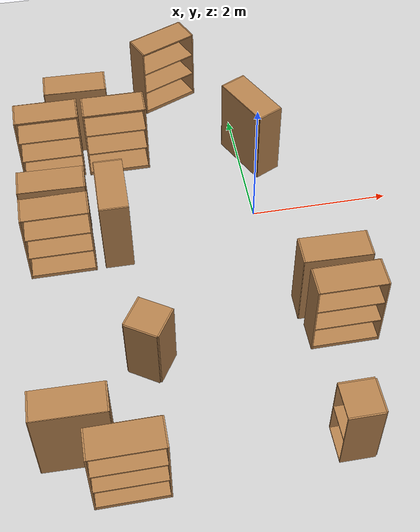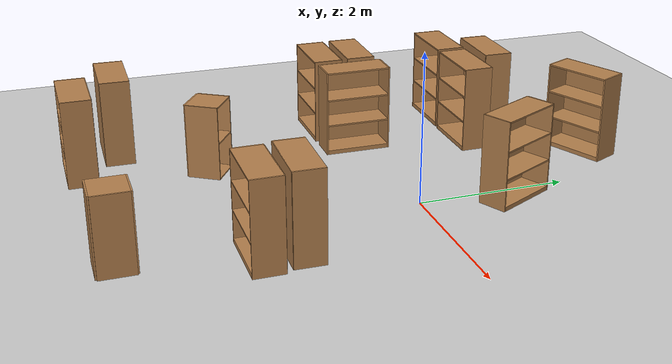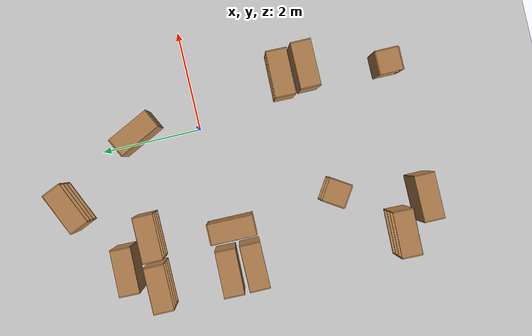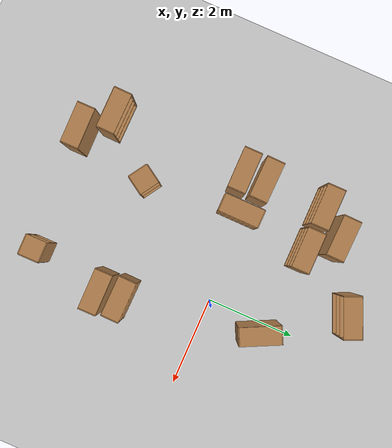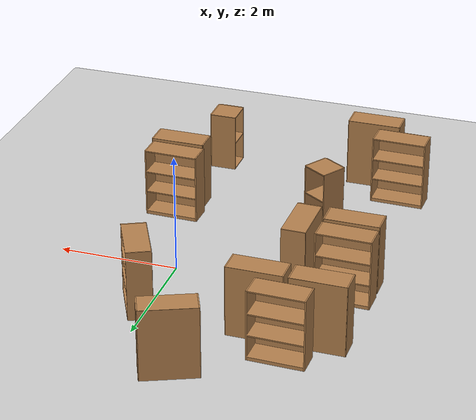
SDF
<sdf version="1.7">
 <world name="default">
  <model name="ground_plane">
   <static>1</static>
   <link name="link">
    <collision name="collision">
     <geometry><plane><normal>0 0 1</normal><size>100 100</size></plane></geometry>
     <surface><friction><ode><mu>100</mu><mu2>50</mu2></ode></friction></surface>
    </collision>
    <visual name="visual">
     <cast_shadows>0</cast_shadows>
     <geometry><plane><normal>0 0 1</normal><size>100 100</size></plane></geometry>
     <material>
      <script><uri>file://media/materials/scripts/gazebo.material</uri><name>Gazebo/Grey</name></script>
     </material>
    </visual>
   </link>
  </model>
  <model name="bookshelf_0">
   <static>1</static>
   <link name="link">
    <inertial><mass>1</mass></inertial>
    <collision name="back">
     <pose>0 0.005 0.6 0 -0 0</pose>
     <geometry><box><size>0.9 0.01 1.2</size></box></geometry>
    </collision>
    <visual name="visual1">
     <pose>0 0.005 0.6 0 -0 0</pose>
     <geometry><box><size>0.9 0.01 1.2</size></box></geometry>
     <material>
      <script><uri>file://media/materials/scripts/gazebo.material</uri><name>Gazebo/Wood</name></script>
     </material>
    </visual>
    <collision name="left_side">
     <pose>0.45 -0.195 0.6 0 -0 0</pose>
     <geometry><box><size>0.02 0.4 1.2</size></box></geometry>
    </collision>
    <visual name="visual2">
     <pose>0.45 -0.195 0.6 0 -0 0</pose>
     <geometry><box><size>0.02 0.4 1.2</size></box></geometry>
     <material>
      <script><uri>file://media/materials/scripts/gazebo.material</uri><name>Gazebo/Wood</name></script>
     </material>
    </visual>
    <collision name="right_side">
     <pose>-0.45 -0.195 0.6 0 -0 0</pose>
     <geometry><box><size>0.02 0.4 1.2</size></box></geometry>
    </collision>
    <visual name="visual3">
     <pose>-0.45 -0.195 0.6 0 -0 0</pose>
     <geometry><box><size>0.02 0.4 1.2</size></box></geometry>
     <material>
      <script><uri>file://media/materials/scripts/gazebo.material</uri><name>Gazebo/Wood</name></script>
     </material>
    </visual>
    <collision name="bottom">
     <pose>0 -0.195 0.03 0 -0 0</pose>
     <geometry><box><size>0.88 0.4 0.06</size></box></geometry>
    </collision>
    <visual name="visual4">
     <pose>0 -0.195 0.03 0 -0 0</pose>
     <geometry><box><size>0.88 0.4 0.06</size></box></geometry>
     <material>
      <script><uri>file://media/materials/scripts/gazebo.material</uri><name>Gazebo/Wood</name></script>
     </material>
    </visual>
    <collision name="top">
     <pose>0 -0.195 1.19 0 -0 0</pose>
     <geometry><box><size>0.88 0.4 0.02</size></box></geometry>
    </collision>
    <visual name="visual5">
     <pose>0 -0.195 1.19 0 -0 0</pose>
     <geometry><box><size>0.88 0.4 0.02</size></box></geometry>
     <material>
      <script><uri>file://media/materials/scripts/gazebo.material</uri><name>Gazebo/Wood</name></script>
     </material>
    </visual>
    <collision name="low_shelf">
     <pose>0 -0.195 0.43 0 -0 0</pose>
     <geometry><box><size>0.88 0.4 0.02</size></box></geometry>
    </collision>
    <visual name="visual6">
     <pose>0 -0.195 0.43 0 -0 0</pose>
     <geometry><box><size>0.88 0.4 0.02</size></box></geometry>
     <material>
      <script><uri>file://media/materials/scripts/gazebo.material</uri><name>Gazebo/Wood</name></script>
     </material>
    </visual>
    <collision name="high_shelf">
     <pose>0 -0.195 0.8 0 -0 0</pose>
     <geometry><box><size>0.88 0.4 0.02</size></box></geometry>
    </collision>
    <visual name="visual7">
     <pose>0 -0.195 0.8 0 -0 0</pose>
     <geometry><box><size>0.88 0.4 0.02</size></box></geometry>
     <material>
      <script><uri>file://media/materials/scripts/gazebo.material</uri><name>Gazebo/Wood</name></script>
     </material>
    </visual>
   </link>
   <pose>0.718779 -2.08136 0 0 -0 0</pose>
  </model>
  <model name="bookshelf_1_clone_0">
   <static>1</static>
   <link name="link">
    <inertial><mass>1</mass></inertial>
    <collision name="back">
     <pose>0 0.005 0.6 0 -0 0</pose>
     <geometry><box><size>0.9 0.01 1.2</size></box></geometry>
    </collision>
    <visual name="visual1">
     <pose>0 0.005 0.6 0 -0 0</pose>
     <geometry><box><size>0.9 0.01 1.2</size></box></geometry>
     <material>
      <script><uri>file://media/materials/scripts/gazebo.material</uri><name>Gazebo/Wood</name></script>
     </material>
    </visual>
    <collision name="left_side">
     <pose>0.45 -0.195 0.6 0 -0 0</pose>
     <geometry><box><size>0.02 0.4 1.2</size></box></geometry>
    </collision>
    <visual name="visual2">
     <pose>0.45 -0.195 0.6 0 -0 0</pose>
     <geometry><box><size>0.02 0.4 1.2</size></box></geometry>
     <material>
      <script><uri>file://media/materials/scripts/gazebo.material</uri><name>Gazebo/Wood</name></script>
     </material>
    </visual>
    <collision name="right_side">
     <pose>-0.45 -0.195 0.6 0 -0 0</pose>
     <geometry><box><size>0.02 0.4 1.2</size></box></geometry>
    </collision>
    <visual name="visual3">
     <pose>-0.45 -0.195 0.6 0 -0 0</pose>
     <geometry><box><size>0.02 0.4 1.2</size></box></geometry>
     <material>
      <script><uri>file://media/materials/scripts/gazebo.material</uri><name>Gazebo/Wood</name></script>
     </material>
    </visual>
    <collision name="bottom">
     <pose>0 -0.195 0.03 0 -0 0</pose>
     <geometry><box><size>0.88 0.4 0.06</size></box></geometry>
    </collision>
    <visual name="visual4">
     <pose>0 -0.195 0.03 0 -0 0</pose>
     <geometry><box><size>0.88 0.4 0.06</size></box></geometry>
     <material>
      <script><uri>file://media/materials/scripts/gazebo.material</uri><name>Gazebo/Wood</name></script>
     </material>
    </visual>
    <collision name="top">
     <pose>0 -0.195 1.19 0 -0 0</pose>
     <geometry><box><size>0.88 0.4 0.02</size></box></geometry>
    </collision>
    <visual name="visual5">
     <pose>0 -0.195 1.19 0 -0 0</pose>
     <geometry><box><size>0.88 0.4 0.02</size></box></geometry>
     <material>
      <script><uri>file://media/materials/scripts/gazebo.material</uri><name>Gazebo/Wood</name></script>
     </material>
    </visual>
    <collision name="low_shelf">
     <pose>0 -0.195 0.43 0 -0 0</pose>
     <geometry><box><size>0.88 0.4 0.02</size></box></geometry>
    </collision>
    <visual name="visual6">
     <pose>0 -0.195 0.43 0 -0 0</pose>
     <geometry><box><size>0.88 0.4 0.02</size></box></geometry>
     <material>
      <script><uri>file://media/materials/scripts/gazebo.material</uri><name>Gazebo/Wood</name></script>
     </material>
    </visual>
    <collision name="high_shelf">
     <pose>0 -0.195 0.8 0 -0 0</pose>
     <geometry><box><size>0.88 0.4 0.02</size></box></geometry>
    </collision>
    <visual name="visual7">
     <pose>0 -0.195 0.8 0 -0 0</pose>
     <geometry><box><size>0.88 0.4 0.02</size></box></geometry>
     <material>
      <script><uri>file://media/materials/scripts/gazebo.material</uri><name>Gazebo/Wood</name></script>
     </material>
    </visual>
   </link>
   <pose>0.660104 -1.9707 0 0 -0 3.12003</pose>
  </model>
  <model name="bookshelf_5">
   <static>1</static>
   <link name="link">
    <inertial><mass>1</mass></inertial>
    <collision name="back">
     <pose>0 0.005 0.6 0 -0 0</pose>
     <geometry><box><size>0.9 0.01 1.2</size></box></geometry>
    </collision>
    <visual name="visual1">
     <pose>0 0.005 0.6 0 -0 0</pose>
     <geometry><box><size>0.9 0.01 1.2</size></box></geometry>
     <material>
      <script><uri>file://media/materials/scripts/gazebo.material</uri><name>Gazebo/Wood</name></script>
     </material>
    </visual>
    <collision name="left_side">
     <pose>0.45 -0.195 0.6 0 -0 0</pose>
     <geometry><box><size>0.02 0.4 1.2</size></box></geometry>
    </collision>
    <visual name="visual2">
     <pose>0.45 -0.195 0.6 0 -0 0</pose>
     <geometry><box><size>0.02 0.4 1.2</size></box></geometry>
     <material>
      <script><uri>file://media/materials/scripts/gazebo.material</uri><name>Gazebo/Wood</name></script>
     </material>
    </visual>
    <collision name="right_side">
     <pose>-0.45 -0.195 0.6 0 -0 0</pose>
     <geometry><box><size>0.02 0.4 1.2</size></box></geometry>
    </collision>
    <visual name="visual3">
     <pose>-0.45 -0.195 0.6 0 -0 0</pose>
     <geometry><box><size>0.02 0.4 1.2</size></box></geometry>
     <material>
      <script><uri>file://media/materials/scripts/gazebo.material</uri><name>Gazebo/Wood</name></script>
     </material>
    </visual>
    <collision name="bottom">
     <pose>0 -0.195 0.03 0 -0 0</pose>
     <geometry><box><size>0.88 0.4 0.06</size></box></geometry>
    </collision>
    <visual name="visual4">
     <pose>0 -0.195 0.03 0 -0 0</pose>
     <geometry><box><size>0.88 0.4 0.06</size></box></geometry>
     <material>
      <script><uri>file://media/materials/scripts/gazebo.material</uri><name>Gazebo/Wood</name></script>
     </material>
    </visual>
    <collision name="top">
     <pose>0 -0.195 1.19 0 -0 0</pose>
     <geometry><box><size>0.88 0.4 0.02</size></box></geometry>
    </collision>
    <visual name="visual5">
     <pose>0 -0.195 1.19 0 -0 0</pose>
     <geometry><box><size>0.88 0.4 0.02</size></box></geometry>
     <material>
      <script><uri>file://media/materials/scripts/gazebo.material</uri><name>Gazebo/Wood</name></script>
     </material>
    </visual>
    <collision name="low_shelf">
     <pose>0 -0.195 0.43 0 -0 0</pose>
     <geometry><box><size>0.88 0.4 0.02</size></box></geometry>
    </collision>
    <visual name="visual6">
     <pose>0 -0.195 0.43 0 -0 0</pose>
     <geometry><box><size>0.88 0.4 0.02</size></box></geometry>
     <material>
      <script><uri>file://media/materials/scripts/gazebo.material</uri><name>Gazebo/Wood</name></script>
     </material>
    </visual>
    <collision name="high_shelf">
     <pose>0 -0.195 0.8 0 -0 0</pose>
     <geometry><box><size>0.88 0.4 0.02</size></box></geometry>
    </collision>
    <visual name="visual7">
     <pose>0 -0.195 0.8 0 -0 0</pose>
     <geometry><box><size>0.88 0.4 0.02</size></box></geometry>
     <material>
      <script><uri>file://media/materials/scripts/gazebo.material</uri><name>Gazebo/Wood</name></script>
     </material>
    </visual>
   </link>
   <pose>-1.83428 1.61576 0 0 -0 0</pose>
  </model>
  <model name="bookshelf_6">
   <static>1</static>
   <link name="link">
    <inertial><mass>1</mass></inertial>
    <collision name="back">
     <pose>0 0.005 0.6 0 -0 0</pose>
     <geometry><box><size>0.9 0.01 1.2</size></box></geometry>
    </collision>
    <visual name="visual1">
     <pose>0 0.005 0.6 0 -0 0</pose>
     <geometry><box><size>0.9 0.01 1.2</size></box></geometry>
     <material>
      <script><uri>file://media/materials/scripts/gazebo.material</uri><name>Gazebo/Wood</name></script>
     </material>
    </visual>
    <collision name="left_side">
     <pose>0.45 -0.195 0.6 0 -0 0</pose>
     <geometry><box><size>0.02 0.4 1.2</size></box></geometry>
    </collision>
    <visual name="visual2">
     <pose>0.45 -0.195 0.6 0 -0 0</pose>
     <geometry><box><size>0.02 0.4 1.2</size></box></geometry>
     <material>
      <script><uri>file://media/materials/scripts/gazebo.material</uri><name>Gazebo/Wood</name></script>
     </material>
    </visual>
    <collision name="right_side">
     <pose>-0.45 -0.195 0.6 0 -0 0</pose>
     <geometry><box><size>0.02 0.4 1.2</size></box></geometry>
    </collision>
    <visual name="visual3">
     <pose>-0.45 -0.195 0.6 0 -0 0</pose>
     <geometry><box><size>0.02 0.4 1.2</size></box></geometry>
     <material>
      <script><uri>file://media/materials/scripts/gazebo.material</uri><name>Gazebo/Wood</name></script>
     </material>
    </visual>
    <collision name="bottom">
     <pose>0 -0.195 0.03 0 -0 0</pose>
     <geometry><box><size>0.88 0.4 0.06</size></box></geometry>
    </collision>
    <visual name="visual4">
     <pose>0 -0.195 0.03 0 -0 0</pose>
     <geometry><box><size>0.88 0.4 0.06</size></box></geometry>
     <material>
      <script><uri>file://media/materials/scripts/gazebo.material</uri><name>Gazebo/Wood</name></script>
     </material>
    </visual>
    <collision name="top">
     <pose>0 -0.195 1.19 0 -0 0</pose>
     <geometry><box><size>0.88 0.4 0.02</size></box></geometry>
    </collision>
    <visual name="visual5">
     <pose>0 -0.195 1.19 0 -0 0</pose>
     <geometry><box><size>0.88 0.4 0.02</size></box></geometry>
     <material>
      <script><uri>file://media/materials/scripts/gazebo.material</uri><name>Gazebo/Wood</name></script>
     </material>
    </visual>
    <collision name="low_shelf">
     <pose>0 -0.195 0.43 0 -0 0</pose>
     <geometry><box><size>0.88 0.4 0.02</size></box></geometry>
    </collision>
    <visual name="visual6">
     <pose>0 -0.195 0.43 0 -0 0</pose>
     <geometry><box><size>0.88 0.4 0.02</size></box></geometry>
     <material>
      <script><uri>file://media/materials/scripts/gazebo.material</uri><name>Gazebo/Wood</name></script>
     </material>
    </visual>
    <collision name="high_shelf">
     <pose>0 -0.195 0.8 0 -0 0</pose>
     <geometry><box><size>0.88 0.4 0.02</size></box></geometry>
    </collision>
    <visual name="visual7">
     <pose>0 -0.195 0.8 0 -0 0</pose>
     <geometry><box><size>0.88 0.4 0.02</size></box></geometry>
     <material>
      <script><uri>file://media/materials/scripts/gazebo.material</uri><name>Gazebo/Wood</name></script>
     </material>
    </visual>
   </link>
   <pose>-2.82067 1.62678 0 0 -0 0</pose>
  </model>
  <model name="bookshelf_7">
   <static>1</static>
   <link name="link">
    <inertial><mass>1</mass></inertial>
    <collision name="back">
     <pose>0 0.005 0.6 0 -0 0</pose>
     <geometry><box><size>0.9 0.01 1.2</size></box></geometry>
    </collision>
    <visual name="visual1">
     <pose>0 0.005 0.6 0 -0 0</pose>
     <geometry><box><size>0.9 0.01 1.2</size></box></geometry>
     <material>
      <script><uri>file://media/materials/scripts/gazebo.material</uri><name>Gazebo/Wood</name></script>
     </material>
    </visual>
    <collision name="left_side">
     <pose>0.45 -0.195 0.6 0 -0 0</pose>
     <geometry><box><size>0.02 0.4 1.2</size></box></geometry>
    </collision>
    <visual name="visual2">
     <pose>0.45 -0.195 0.6 0 -0 0</pose>
     <geometry><box><size>0.02 0.4 1.2</size></box></geometry>
     <material>
      <script><uri>file://media/materials/scripts/gazebo.material</uri><name>Gazebo/Wood</name></script>
     </material>
    </visual>
    <collision name="right_side">
     <pose>-0.45 -0.195 0.6 0 -0 0</pose>
     <geometry><box><size>0.02 0.4 1.2</size></box></geometry>
    </collision>
    <visual name="visual3">
     <pose>-0.45 -0.195 0.6 0 -0 0</pose>
     <geometry><box><size>0.02 0.4 1.2</size></box></geometry>
     <material>
      <script><uri>file://media/materials/scripts/gazebo.material</uri><name>Gazebo/Wood</name></script>
     </material>
    </visual>
    <collision name="bottom">
     <pose>0 -0.195 0.03 0 -0 0</pose>
     <geometry><box><size>0.88 0.4 0.06</size></box></geometry>
    </collision>
    <visual name="visual4">
     <pose>0 -0.195 0.03 0 -0 0</pose>
     <geometry><box><size>0.88 0.4 0.06</size></box></geometry>
     <material>
      <script><uri>file://media/materials/scripts/gazebo.material</uri><name>Gazebo/Wood</name></script>
     </material>
    </visual>
    <collision name="top">
     <pose>0 -0.195 1.19 0 -0 0</pose>
     <geometry><box><size>0.88 0.4 0.02</size></box></geometry>
    </collision>
    <visual name="visual5">
     <pose>0 -0.195 1.19 0 -0 0</pose>
     <geometry><box><size>0.88 0.4 0.02</size></box></geometry>
     <material>
      <script><uri>file://media/materials/scripts/gazebo.material</uri><name>Gazebo/Wood</name></script>
     </material>
    </visual>
    <collision name="low_shelf">
     <pose>0 -0.195 0.43 0 -0 0</pose>
     <geometry><box><size>0.88 0.4 0.02</size></box></geometry>
    </collision>
    <visual name="visual6">
     <pose>0 -0.195 0.43 0 -0 0</pose>
     <geometry><box><size>0.88 0.4 0.02</size></box></geometry>
     <material>
      <script><uri>file://media/materials/scripts/gazebo.material</uri><name>Gazebo/Wood</name></script>
     </material>
    </visual>
    <collision name="high_shelf">
     <pose>0 -0.195 0.8 0 -0 0</pose>
     <geometry><box><size>0.88 0.4 0.02</size></box></geometry>
    </collision>
    <visual name="visual7">
     <pose>0 -0.195 0.8 0 -0 0</pose>
     <geometry><box><size>0.88 0.4 0.02</size></box></geometry>
     <material>
      <script><uri>file://media/materials/scripts/gazebo.material</uri><name>Gazebo/Wood</name></script>
     </material>
    </visual>
   </link>
   <pose>-2.82561 -0.256279 0 0 -0 0</pose>
  </model>
  <model name="bookshelf_10">
   <static>1</static>
   <link name="link">
    <inertial><mass>1</mass></inertial>
    <collision name="back">
     <pose>0 0.005 0.6 0 -0 0</pose>
     <geometry><box><size>0.9 0.01 1.2</size></box></geometry>
    </collision>
    <visual name="visual1">
     <pose>0 0.005 0.6 0 -0 0</pose>
     <geometry><box><size>0.9 0.01 1.2</size></box></geometry>
     <material>
      <script><uri>file://media/materials/scripts/gazebo.material</uri><name>Gazebo/Wood</name></script>
     </material>
    </visual>
    <collision name="left_side">
     <pose>0.45 -0.195 0.6 0 -0 0</pose>
     <geometry><box><size>0.02 0.4 1.2</size></box></geometry>
    </collision>
    <visual name="visual2">
     <pose>0.45 -0.195 0.6 0 -0 0</pose>
     <geometry><box><size>0.02 0.4 1.2</size></box></geometry>
     <material>
      <script><uri>file://media/materials/scripts/gazebo.material</uri><name>Gazebo/Wood</name></script>
     </material>
    </visual>
    <collision name="right_side">
     <pose>-0.45 -0.195 0.6 0 -0 0</pose>
     <geometry><box><size>0.02 0.4 1.2</size></box></geometry>
    </collision>
    <visual name="visual3">
     <pose>-0.45 -0.195 0.6 0 -0 0</pose>
     <geometry><box><size>0.02 0.4 1.2</size></box></geometry>
     <material>
      <script><uri>file://media/materials/scripts/gazebo.material</uri><name>Gazebo/Wood</name></script>
     </material>
    </visual>
    <collision name="bottom">
     <pose>0 -0.195 0.03 0 -0 0</pose>
     <geometry><box><size>0.88 0.4 0.06</size></box></geometry>
    </collision>
    <visual name="visual4">
     <pose>0 -0.195 0.03 0 -0 0</pose>
     <geometry><box><size>0.88 0.4 0.06</size></box></geometry>
     <material>
      <script><uri>file://media/materials/scripts/gazebo.material</uri><name>Gazebo/Wood</name></script>
     </material>
    </visual>
    <collision name="top">
     <pose>0 -0.195 1.19 0 -0 0</pose>
     <geometry><box><size>0.88 0.4 0.02</size></box></geometry>
    </collision>
    <visual name="visual5">
     <pose>0 -0.195 1.19 0 -0 0</pose>
     <geometry><box><size>0.88 0.4 0.02</size></box></geometry>
     <material>
      <script><uri>file://media/materials/scripts/gazebo.material</uri><name>Gazebo/Wood</name></script>
     </material>
    </visual>
    <collision name="low_shelf">
     <pose>0 -0.195 0.43 0 -0 0</pose>
     <geometry><box><size>0.88 0.4 0.02</size></box></geometry>
    </collision>
    <visual name="visual6">
     <pose>0 -0.195 0.43 0 -0 0</pose>
     <geometry><box><size>0.88 0.4 0.02</size></box></geometry>
     <material>
      <script><uri>file://media/materials/scripts/gazebo.material</uri><name>Gazebo/Wood</name></script>
     </material>
    </visual>
    <collision name="high_shelf">
     <pose>0 -0.195 0.8 0 -0 0</pose>
     <geometry><box><size>0.88 0.4 0.02</size></box></geometry>
    </collision>
    <visual name="visual7">
     <pose>0 -0.195 0.8 0 -0 0</pose>
     <geometry><box><size>0.88 0.4 0.02</size></box></geometry>
     <material>
      <script><uri>file://media/materials/scripts/gazebo.material</uri><name>Gazebo/Wood</name></script>
     </material>
    </visual>
   </link>
   <pose>-2.29001 -3.79548 0 0 -0 0</pose>
  </model>
  <model name="bookshelf_1_clone_clone">
   <static>1</static>
   <link name="link">
    <inertial><mass>1</mass></inertial>
    <collision name="back">
     <pose>0 0.005 0.6 0 -0 0</pose>
     <geometry><box><size>0.9 0.01 1.2</size></box></geometry>
    </collision>
    <visual name="visual1">
     <pose>0 0.005 0.6 0 -0 0</pose>
     <geometry><box><size>0.9 0.01 1.2</size></box></geometry>
     <material>
      <script><uri>file://media/materials/scripts/gazebo.material</uri><name>Gazebo/Wood</name></script>
     </material>
    </visual>
    <collision name="left_side">
     <pose>0.45 -0.195 0.6 0 -0 0</pose>
     <geometry><box><size>0.02 0.4 1.2</size></box></geometry>
    </collision>
    <visual name="visual2">
     <pose>0.45 -0.195 0.6 0 -0 0</pose>
     <geometry><box><size>0.02 0.4 1.2</size></box></geometry>
     <material>
      <script><uri>file://media/materials/scripts/gazebo.material</uri><name>Gazebo/Wood</name></script>
     </material>
    </visual>
    <collision name="right_side">
     <pose>-0.45 -0.195 0.6 0 -0 0</pose>
     <geometry><box><size>0.02 0.4 1.2</size></box></geometry>
    </collision>
    <visual name="visual3">
     <pose>-0.45 -0.195 0.6 0 -0 0</pose>
     <geometry><box><size>0.02 0.4 1.2</size></box></geometry>
     <material>
      <script><uri>file://media/materials/scripts/gazebo.material</uri><name>Gazebo/Wood</name></script>
     </material>
    </visual>
    <collision name="bottom">
     <pose>0 -0.195 0.03 0 -0 0</pose>
     <geometry><box><size>0.88 0.4 0.06</size></box></geometry>
    </collision>
    <visual name="visual4">
     <pose>0 -0.195 0.03 0 -0 0</pose>
     <geometry><box><size>0.88 0.4 0.06</size></box></geometry>
     <material>
      <script><uri>file://media/materials/scripts/gazebo.material</uri><name>Gazebo/Wood</name></script>
     </material>
    </visual>
    <collision name="top">
     <pose>0 -0.195 1.19 0 -0 0</pose>
     <geometry><box><size>0.88 0.4 0.02</size></box></geometry>
    </collision>
    <visual name="visual5">
     <pose>0 -0.195 1.19 0 -0 0</pose>
     <geometry><box><size>0.88 0.4 0.02</size></box></geometry>
     <material>
      <script><uri>file://media/materials/scripts/gazebo.material</uri><name>Gazebo/Wood</name></script>
     </material>
    </visual>
    <collision name="low_shelf">
     <pose>0 -0.195 0.43 0 -0 0</pose>
     <geometry><box><size>0.88 0.4 0.02</size></box></geometry>
    </collision>
    <visual name="visual6">
     <pose>0 -0.195 0.43 0 -0 0</pose>
     <geometry><box><size>0.88 0.4 0.02</size></box></geometry>
     <material>
      <script><uri>file://media/materials/scripts/gazebo.material</uri><name>Gazebo/Wood</name></script>
     </material>
    </visual>
    <collision name="high_shelf">
     <pose>0 -0.195 0.8 0 -0 0</pose>
     <geometry><box><size>0.88 0.4 0.02</size></box></geometry>
    </collision>
    <visual name="visual7">
     <pose>0 -0.195 0.8 0 -0 0</pose>
     <geometry><box><size>0.88 0.4 0.02</size></box></geometry>
     <material>
      <script><uri>file://media/materials/scripts/gazebo.material</uri><name>Gazebo/Wood</name></script>
     </material>
    </visual>
   </link>
   <pose>-2.87424 -3.6202 0 0 -0 3.12003</pose>
  </model>
  <model name="bookshelf_1_clone_clone_1">
   <static>1</static>
   <link name="link">
    <inertial><mass>1</mass></inertial>
    <collision name="back">
     <pose>0 0.005 0.6 0 -0 0</pose>
     <geometry><box><size>0.9 0.01 1.2</size></box></geometry>
    </collision>
    <visual name="visual1">
     <pose>0 0.005 0.6 0 -0 0</pose>
     <geometry><box><size>0.9 0.01 1.2</size></box></geometry>
     <material>
      <script><uri>file://media/materials/scripts/gazebo.material</uri><name>Gazebo/Wood</name></script>
     </material>
    </visual>
    <collision name="left_side">
     <pose>0.45 -0.195 0.6 0 -0 0</pose>
     <geometry><box><size>0.02 0.4 1.2</size></box></geometry>
    </collision>
    <visual name="visual2">
     <pose>0.45 -0.195 0.6 0 -0 0</pose>
     <geometry><box><size>0.02 0.4 1.2</size></box></geometry>
     <material>
      <script><uri>file://media/materials/scripts/gazebo.material</uri><name>Gazebo/Wood</name></script>
     </material>
    </visual>
    <collision name="right_side">
     <pose>-0.45 -0.195 0.6 0 -0 0</pose>
     <geometry><box><size>0.02 0.4 1.2</size></box></geometry>
    </collision>
    <visual name="visual3">
     <pose>-0.45 -0.195 0.6 0 -0 0</pose>
     <geometry><box><size>0.02 0.4 1.2</size></box></geometry>
     <material>
      <script><uri>file://media/materials/scripts/gazebo.material</uri><name>Gazebo/Wood</name></script>
     </material>
    </visual>
    <collision name="bottom">
     <pose>0 -0.195 0.03 0 -0 0</pose>
     <geometry><box><size>0.88 0.4 0.06</size></box></geometry>
    </collision>
    <visual name="visual4">
     <pose>0 -0.195 0.03 0 -0 0</pose>
     <geometry><box><size>0.88 0.4 0.06</size></box></geometry>
     <material>
      <script><uri>file://media/materials/scripts/gazebo.material</uri><name>Gazebo/Wood</name></script>
     </material>
    </visual>
    <collision name="top">
     <pose>0 -0.195 1.19 0 -0 0</pose>
     <geometry><box><size>0.88 0.4 0.02</size></box></geometry>
    </collision>
    <visual name="visual5">
     <pose>0 -0.195 1.19 0 -0 0</pose>
     <geometry><box><size>0.88 0.4 0.02</size></box></geometry>
     <material>
      <script><uri>file://media/materials/scripts/gazebo.material</uri><name>Gazebo/Wood</name></script>
     </material>
    </visual>
    <collision name="low_shelf">
     <pose>0 -0.195 0.43 0 -0 0</pose>
     <geometry><box><size>0.88 0.4 0.02</size></box></geometry>
    </collision>
    <visual name="visual6">
     <pose>0 -0.195 0.43 0 -0 0</pose>
     <geometry><box><size>0.88 0.4 0.02</size></box></geometry>
     <material>
      <script><uri>file://media/materials/scripts/gazebo.material</uri><name>Gazebo/Wood</name></script>
     </material>
    </visual>
    <collision name="high_shelf">
     <pose>0 -0.195 0.8 0 -0 0</pose>
     <geometry><box><size>0.88 0.4 0.02</size></box></geometry>
    </collision>
    <visual name="visual7">
     <pose>0 -0.195 0.8 0 -0 0</pose>
     <geometry><box><size>0.88 0.4 0.02</size></box></geometry>
     <material>
      <script><uri>file://media/materials/scripts/gazebo.material</uri><name>Gazebo/Wood</name></script>
     </material>
    </visual>
   </link>
   <pose>-2.83533 -0.148738 0 0 -0 3.12003</pose>
  </model>
  <model name="bookshelf_1_clone_clone_4">
   <static>1</static>
   <link name="link">
    <inertial><mass>1</mass></inertial>
    <collision name="back">
     <pose>0 0.005 0.6 0 -0 0</pose>
     <geometry><box><size>0.9 0.01 1.2</size></box></geometry>
    </collision>
    <visual name="visual1">
     <pose>0 0.005 0.6 0 -0 0</pose>
     <geometry><box><size>0.9 0.01 1.2</size></box></geometry>
     <material>
      <script><uri>file://media/materials/scripts/gazebo.material</uri><name>Gazebo/Wood</name></script>
     </material>
    </visual>
    <collision name="left_side">
     <pose>0.45 -0.195 0.6 0 -0 0</pose>
     <geometry><box><size>0.02 0.4 1.2</size></box></geometry>
    </collision>
    <visual name="visual2">
     <pose>0.45 -0.195 0.6 0 -0 0</pose>
     <geometry><box><size>0.02 0.4 1.2</size></box></geometry>
     <material>
      <script><uri>file://media/materials/scripts/gazebo.material</uri><name>Gazebo/Wood</name></script>
     </material>
    </visual>
    <collision name="right_side">
     <pose>-0.45 -0.195 0.6 0 -0 0</pose>
     <geometry><box><size>0.02 0.4 1.2</size></box></geometry>
    </collision>
    <visual name="visual3">
     <pose>-0.45 -0.195 0.6 0 -0 0</pose>
     <geometry><box><size>0.02 0.4 1.2</size></box></geometry>
     <material>
      <script><uri>file://media/materials/scripts/gazebo.material</uri><name>Gazebo/Wood</name></script>
     </material>
    </visual>
    <collision name="bottom">
     <pose>0 -0.195 0.03 0 -0 0</pose>
     <geometry><box><size>0.88 0.4 0.06</size></box></geometry>
    </collision>
    <visual name="visual4">
     <pose>0 -0.195 0.03 0 -0 0</pose>
     <geometry><box><size>0.88 0.4 0.06</size></box></geometry>
     <material>
      <script><uri>file://media/materials/scripts/gazebo.material</uri><name>Gazebo/Wood</name></script>
     </material>
    </visual>
    <collision name="top">
     <pose>0 -0.195 1.19 0 -0 0</pose>
     <geometry><box><size>0.88 0.4 0.02</size></box></geometry>
    </collision>
    <visual name="visual5">
     <pose>0 -0.195 1.19 0 -0 0</pose>
     <geometry><box><size>0.88 0.4 0.02</size></box></geometry>
     <material>
      <script><uri>file://media/materials/scripts/gazebo.material</uri><name>Gazebo/Wood</name></script>
     </material>
    </visual>
    <collision name="low_shelf">
     <pose>0 -0.195 0.43 0 -0 0</pose>
     <geometry><box><size>0.88 0.4 0.02</size></box></geometry>
    </collision>
    <visual name="visual6">
     <pose>0 -0.195 0.43 0 -0 0</pose>
     <geometry><box><size>0.88 0.4 0.02</size></box></geometry>
     <material>
      <script><uri>file://media/materials/scripts/gazebo.material</uri><name>Gazebo/Wood</name></script>
     </material>
    </visual>
    <collision name="high_shelf">
     <pose>0 -0.195 0.8 0 -0 0</pose>
     <geometry><box><size>0.88 0.4 0.02</size></box></geometry>
    </collision>
    <visual name="visual7">
     <pose>0 -0.195 0.8 0 -0 0</pose>
     <geometry><box><size>0.88 0.4 0.02</size></box></geometry>
     <material>
      <script><uri>file://media/materials/scripts/gazebo.material</uri><name>Gazebo/Wood</name></script>
     </material>
    </visual>
   </link>
   <pose>-2.35556 1.79144 0 0 -0 3.12003</pose>
  </model>
  <model name="bookshelf_1_clone_1">
   <static>1</static>
   <link name="link">
    <inertial><mass>1</mass></inertial>
    <collision name="back">
     <pose>0 0.005 0.6 0 -0 0</pose>
     <geometry><box><size>0.9 0.01 1.2</size></box></geometry>
    </collision>
    <visual name="visual1">
     <pose>0 0.005 0.6 0 -0 0</pose>
     <geometry><box><size>0.9 0.01 1.2</size></box></geometry>
     <material>
      <script><uri>file://media/materials/scripts/gazebo.material</uri><name>Gazebo/Wood</name></script>
     </material>
    </visual>
    <collision name="left_side">
     <pose>0.45 -0.195 0.6 0 -0 0</pose>
     <geometry><box><size>0.02 0.4 1.2</size></box></geometry>
    </collision>
    <visual name="visual2">
     <pose>0.45 -0.195 0.6 0 -0 0</pose>
     <geometry><box><size>0.02 0.4 1.2</size></box></geometry>
     <material>
      <script><uri>file://media/materials/scripts/gazebo.material</uri><name>Gazebo/Wood</name></script>
     </material>
    </visual>
    <collision name="right_side">
     <pose>-0.45 -0.195 0.6 0 -0 0</pose>
     <geometry><box><size>0.02 0.4 1.2</size></box></geometry>
    </collision>
    <visual name="visual3">
     <pose>-0.45 -0.195 0.6 0 -0 0</pose>
     <geometry><box><size>0.02 0.4 1.2</size></box></geometry>
     <material>
      <script><uri>file://media/materials/scripts/gazebo.material</uri><name>Gazebo/Wood</name></script>
     </material>
    </visual>
    <collision name="bottom">
     <pose>0 -0.195 0.03 0 -0 0</pose>
     <geometry><box><size>0.88 0.4 0.06</size></box></geometry>
    </collision>
    <visual name="visual4">
     <pose>0 -0.195 0.03 0 -0 0</pose>
     <geometry><box><size>0.88 0.4 0.06</size></box></geometry>
     <material>
      <script><uri>file://media/materials/scripts/gazebo.material</uri><name>Gazebo/Wood</name></script>
     </material>
    </visual>
    <collision name="top">
     <pose>0 -0.195 1.19 0 -0 0</pose>
     <geometry><box><size>0.88 0.4 0.02</size></box></geometry>
    </collision>
    <visual name="visual5">
     <pose>0 -0.195 1.19 0 -0 0</pose>
     <geometry><box><size>0.88 0.4 0.02</size></box></geometry>
     <material>
      <script><uri>file://media/materials/scripts/gazebo.material</uri><name>Gazebo/Wood</name></script>
     </material>
    </visual>
    <collision name="low_shelf">
     <pose>0 -0.195 0.43 0 -0 0</pose>
     <geometry><box><size>0.88 0.4 0.02</size></box></geometry>
    </collision>
    <visual name="visual6">
     <pose>0 -0.195 0.43 0 -0 0</pose>
     <geometry><box><size>0.88 0.4 0.02</size></box></geometry>
     <material>
      <script><uri>file://media/materials/scripts/gazebo.material</uri><name>Gazebo/Wood</name></script>
     </material>
    </visual>
    <collision name="high_shelf">
     <pose>0 -0.195 0.8 0 -0 0</pose>
     <geometry><box><size>0.88 0.4 0.02</size></box></geometry>
    </collision>
    <visual name="visual7">
     <pose>0 -0.195 0.8 0 -0 0</pose>
     <geometry><box><size>0.88 0.4 0.02</size></box></geometry>
     <material>
      <script><uri>file://media/materials/scripts/gazebo.material</uri><name>Gazebo/Wood</name></script>
     </material>
    </visual>
   </link>
   <pose>-2.23429 -0.180392 0 0 -0 1.56314</pose>
  </model>
  <model name="bookshelf_1_clone_9_clone">
   <static>1</static>
   <link name="link">
    <inertial><mass>1</mass></inertial>
    <collision name="back">
     <pose>0 0.005 0.6 0 -0 0</pose>
     <geometry><box><size>0.9 0.01 1.2</size></box></geometry>
    </collision>
    <visual name="visual1">
     <pose>0 0.005 0.6 0 -0 0</pose>
     <geometry><box><size>0.9 0.01 1.2</size></box></geometry>
     <material>
      <script><uri>file://media/materials/scripts/gazebo.material</uri><name>Gazebo/Wood</name></script>
     </material>
    </visual>
    <collision name="left_side">
     <pose>0.45 -0.195 0.6 0 -0 0</pose>
     <geometry><box><size>0.02 0.4 1.2</size></box></geometry>
    </collision>
    <visual name="visual2">
     <pose>0.45 -0.195 0.6 0 -0 0</pose>
     <geometry><box><size>0.02 0.4 1.2</size></box></geometry>
     <material>
      <script><uri>file://media/materials/scripts/gazebo.material</uri><name>Gazebo/Wood</name></script>
     </material>
    </visual>
    <collision name="right_side">
     <pose>-0.45 -0.195 0.6 0 -0 0</pose>
     <geometry><box><size>0.02 0.4 1.2</size></box></geometry>
    </collision>
    <visual name="visual3">
     <pose>-0.45 -0.195 0.6 0 -0 0</pose>
     <geometry><box><size>0.02 0.4 1.2</size></box></geometry>
     <material>
      <script><uri>file://media/materials/scripts/gazebo.material</uri><name>Gazebo/Wood</name></script>
     </material>
    </visual>
    <collision name="bottom">
     <pose>0 -0.195 0.03 0 -0 0</pose>
     <geometry><box><size>0.88 0.4 0.06</size></box></geometry>
    </collision>
    <visual name="visual4">
     <pose>0 -0.195 0.03 0 -0 0</pose>
     <geometry><box><size>0.88 0.4 0.06</size></box></geometry>
     <material>
      <script><uri>file://media/materials/scripts/gazebo.material</uri><name>Gazebo/Wood</name></script>
     </material>
    </visual>
    <collision name="top">
     <pose>0 -0.195 1.19 0 -0 0</pose>
     <geometry><box><size>0.88 0.4 0.02</size></box></geometry>
    </collision>
    <visual name="visual5">
     <pose>0 -0.195 1.19 0 -0 0</pose>
     <geometry><box><size>0.88 0.4 0.02</size></box></geometry>
     <material>
      <script><uri>file://media/materials/scripts/gazebo.material</uri><name>Gazebo/Wood</name></script>
     </material>
    </visual>
    <collision name="low_shelf">
     <pose>0 -0.195 0.43 0 -0 0</pose>
     <geometry><box><size>0.88 0.4 0.02</size></box></geometry>
    </collision>
    <visual name="visual6">
     <pose>0 -0.195 0.43 0 -0 0</pose>
     <geometry><box><size>0.88 0.4 0.02</size></box></geometry>
     <material>
      <script><uri>file://media/materials/scripts/gazebo.material</uri><name>Gazebo/Wood</name></script>
     </material>
    </visual>
    <collision name="high_shelf">
     <pose>0 -0.195 0.8 0 -0 0</pose>
     <geometry><box><size>0.88 0.4 0.02</size></box></geometry>
    </collision>
    <visual name="visual7">
     <pose>0 -0.195 0.8 0 -0 0</pose>
     <geometry><box><size>0.88 0.4 0.02</size></box></geometry>
     <material>
      <script><uri>file://media/materials/scripts/gazebo.material</uri><name>Gazebo/Wood</name></script>
     </material>
    </visual>
   </link>
   <pose>-1 3 0 0.002997 -0.001316 0.415193</pose>
  </model>
  <model name="bookshelf_1_clone_9_clone_1_clone_0">
   <static>1</static>
   <link name="link">
    <inertial><mass>1</mass></inertial>
    <collision name="back">
     <pose>0 0.005 0.6 0 -0 0</pose>
     <geometry><box><size>0.9 0.01 1.2</size></box></geometry>
    </collision>
    <visual name="visual1">
     <pose>0 0.005 0.6 0 -0 0</pose>
     <geometry><box><size>0.9 0.01 1.2</size></box></geometry>
     <material>
      <script><uri>file://media/materials/scripts/gazebo.material</uri><name>Gazebo/Wood</name></script>
     </material>
    </visual>
    <collision name="left_side">
     <pose>0.45 -0.195 0.6 0 -0 0</pose>
     <geometry><box><size>0.02 0.4 1.2</size></box></geometry>
    </collision>
    <visual name="visual2">
     <pose>0.45 -0.195 0.6 0 -0 0</pose>
     <geometry><box><size>0.02 0.4 1.2</size></box></geometry>
     <material>
      <script><uri>file://media/materials/scripts/gazebo.material</uri><name>Gazebo/Wood</name></script>
     </material>
    </visual>
    <collision name="right_side">
     <pose>-0.45 -0.195 0.6 0 -0 0</pose>
     <geometry><box><size>0.02 0.4 1.2</size></box></geometry>
    </collision>
    <visual name="visual3">
     <pose>-0.45 -0.195 0.6 0 -0 0</pose>
     <geometry><box><size>0.02 0.4 1.2</size></box></geometry>
     <material>
      <script><uri>file://media/materials/scripts/gazebo.material</uri><name>Gazebo/Wood</name></script>
     </material>
    </visual>
    <collision name="bottom">
     <pose>0 -0.195 0.03 0 -0 0</pose>
     <geometry><box><size>0.88 0.4 0.06</size></box></geometry>
    </collision>
    <visual name="visual4">
     <pose>0 -0.195 0.03 0 -0 0</pose>
     <geometry><box><size>0.88 0.4 0.06</size></box></geometry>
     <material>
      <script><uri>file://media/materials/scripts/gazebo.material</uri><name>Gazebo/Wood</name></script>
     </material>
    </visual>
    <collision name="top">
     <pose>0 -0.195 1.19 0 -0 0</pose>
     <geometry><box><size>0.88 0.4 0.02</size></box></geometry>
    </collision>
    <visual name="visual5">
     <pose>0 -0.195 1.19 0 -0 0</pose>
     <geometry><box><size>0.88 0.4 0.02</size></box></geometry>
     <material>
      <script><uri>file://media/materials/scripts/gazebo.material</uri><name>Gazebo/Wood</name></script>
     </material>
    </visual>
    <collision name="low_shelf">
     <pose>0 -0.195 0.43 0 -0 0</pose>
     <geometry><box><size>0.88 0.4 0.02</size></box></geometry>
    </collision>
    <visual name="visual6">
     <pose>0 -0.195 0.43 0 -0 0</pose>
     <geometry><box><size>0.88 0.4 0.02</size></box></geometry>
     <material>
      <script><uri>file://media/materials/scripts/gazebo.material</uri><name>Gazebo/Wood</name></script>
     </material>
    </visual>
    <collision name="high_shelf">
     <pose>0 -0.195 0.8 0 -0 0</pose>
     <geometry><box><size>0.88 0.4 0.02</size></box></geometry>
    </collision>
    <visual name="visual7">
     <pose>0 -0.195 0.8 0 -0 0</pose>
     <geometry><box><size>0.88 0.4 0.02</size></box></geometry>
     <material>
      <script><uri>file://media/materials/scripts/gazebo.material</uri><name>Gazebo/Wood</name></script>
     </material>
    </visual>
   </link>
   <pose>0.0134 1.13534 0 -0.001444 -0.002937 2.02914</pose>
  </model>
  <model name="cabinet_clone">
   <static>1</static>
   <link name="cabinet_bottom_plate">
    <inertial>
     <pose>0 0 -1 0 -0 0</pose>
     <inertia><ixx>2.05</ixx><ixy>0</ixy><ixz>0</ixz><iyy>2.05</iyy><iyz>0</iyz><izz>2.05</izz></inertia>
     <mass>25</mass>
    </inertial>
    <collision name="cabinet_bottom_plate_geom">
     <pose>0 0 0.01 0 -0 0</pose>
     <geometry><box><size>0.45 0.45 0.02</size></box></geometry>
    </collision>
    <visual name="cabinet_bottom_plate_geom_visual">
     <pose>0 0 0.01 0 -0 0</pose>
     <geometry><box><size>0.45 0.45 0.02</size></box></geometry>
     <material>
      <script><uri>file://media/materials/scripts/gazebo.material</uri><name>Gazebo/Wood</name></script>
     </material>
    </visual>
    <collision name="cabinet_bottom_plate_geom_cabinet_back_plate">
     <pose>0.235 0 0.51 0 -0 0</pose>
     <geometry><box><size>0.02 0.45 1.02</size></box></geometry>
    </collision>
    <visual name="cabinet_bottom_plate_geom_cabinet_back_plate_visual">
     <pose>0.235 0 0.51 0 -0 0</pose>
     <geometry><box><size>0.02 0.45 1.02</size></box></geometry>
     <material>
      <script><uri>file://media/materials/scripts/gazebo.material</uri><name>Gazebo/Wood</name></script>
     </material>
    </visual>
    <collision name="cabinet_bottom_plate_geom_cabinet_left_plate">
     <pose>0 0.235 0.51 0 -0 0</pose>
     <geometry><box><size>0.45 0.02 1.02</size></box></geometry>
    </collision>
    <visual name="cabinet_bottom_plate_geom_cabinet_left_plate_visual">
     <pose>0 0.235 0.51 0 -0 0</pose>
     <geometry><box><size>0.45 0.02 1.02</size></box></geometry>
     <material>
      <script><uri>file://media/materials/scripts/gazebo.material</uri><name>Gazebo/Wood</name></script>
     </material>
    </visual>
    <collision name="cabinet_bottom_plate_geom_cabinet_middle_plate">
     <pose>0 0 0.51 0 -0 0</pose>
     <geometry><box><size>0.45 0.45 0.02</size></box></geometry>
    </collision>
    <visual name="cabinet_bottom_plate_geom_cabinet_middle_plate_visual">
     <pose>0 0 0.51 0 -0 0</pose>
     <geometry><box><size>0.45 0.45 0.02</size></box></geometry>
     <material>
      <script><uri>file://media/materials/scripts/gazebo.material</uri><name>Gazebo/Wood</name></script>
     </material>
    </visual>
    <collision name="cabinet_bottom_plate_geom_cabinet_right_plate">
     <pose>0 -0.235 0.51 0 -0 0</pose>
     <geometry><box><size>0.45 0.02 1.02</size></box></geometry>
    </collision>
    <visual name="cabinet_bottom_plate_geom_cabinet_right_plate_visual">
     <pose>0 -0.235 0.51 0 -0 0</pose>
     <geometry><box><size>0.45 0.02 1.02</size></box></geometry>
     <material>
      <script><uri>file://media/materials/scripts/gazebo.material</uri><name>Gazebo/Wood</name></script>
     </material>
    </visual>
    <collision name="cabinet_bottom_plate_geom_cabinet_top_plate">
     <pose>0 0 1.01 0 -0 0</pose>
     <geometry><box><size>0.45 0.45 0.02</size></box></geometry>
    </collision>
    <visual name="cabinet_bottom_plate_geom_cabinet_top_plate_visual">
     <pose>0 0 1.01 0 -0 0</pose>
     <geometry><box><size>0.45 0.45 0.02</size></box></geometry>
     <material>
      <script><uri>file://media/materials/scripts/gazebo.material</uri><name>Gazebo/Wood</name></script>
     </material>
    </visual>
   </link>
   <pose>0.424215 -3.86725 0 0 -0 0</pose>
  </model>
  <model name="cabinet_clone_3">
   <static>1</static>
   <link name="cabinet_bottom_plate">
    <inertial>
     <pose>0 0 -1 0 -0 0</pose>
     <inertia><ixx>2.05</ixx><ixy>0</ixy><ixz>0</ixz><iyy>2.05</iyy><iyz>0</iyz><izz>2.05</izz></inertia>
     <mass>25</mass>
    </inertial>
    <collision name="cabinet_bottom_plate_geom">
     <pose>0 0 0.01 0 -0 0</pose>
     <geometry><box><size>0.45 0.45 0.02</size></box></geometry>
    </collision>
    <visual name="cabinet_bottom_plate_geom_visual">
     <pose>0 0 0.01 0 -0 0</pose>
     <geometry><box><size>0.45 0.45 0.02</size></box></geometry>
     <material>
      <script><uri>file://media/materials/scripts/gazebo.material</uri><name>Gazebo/Wood</name></script>
     </material>
    </visual>
    <collision name="cabinet_bottom_plate_geom_cabinet_back_plate">
     <pose>0.235 0 0.51 0 -0 0</pose>
     <geometry><box><size>0.02 0.45 1.02</size></box></geometry>
    </collision>
    <visual name="cabinet_bottom_plate_geom_cabinet_back_plate_visual">
     <pose>0.235 0 0.51 0 -0 0</pose>
     <geometry><box><size>0.02 0.45 1.02</size></box></geometry>
     <material>
      <script><uri>file://media/materials/scripts/gazebo.material</uri><name>Gazebo/Wood</name></script>
     </material>
    </visual>
    <collision name="cabinet_bottom_plate_geom_cabinet_left_plate">
     <pose>0 0.235 0.51 0 -0 0</pose>
     <geometry><box><size>0.45 0.02 1.02</size></box></geometry>
    </collision>
    <visual name="cabinet_bottom_plate_geom_cabinet_left_plate_visual">
     <pose>0 0.235 0.51 0 -0 0</pose>
     <geometry><box><size>0.45 0.02 1.02</size></box></geometry>
     <material>
      <script><uri>file://media/materials/scripts/gazebo.material</uri><name>Gazebo/Wood</name></script>
     </material>
    </visual>
    <collision name="cabinet_bottom_plate_geom_cabinet_middle_plate">
     <pose>0 0 0.51 0 -0 0</pose>
     <geometry><box><size>0.45 0.45 0.02</size></box></geometry>
    </collision>
    <visual name="cabinet_bottom_plate_geom_cabinet_middle_plate_visual">
     <pose>0 0 0.51 0 -0 0</pose>
     <geometry><box><size>0.45 0.45 0.02</size></box></geometry>
     <material>
      <script><uri>file://media/materials/scripts/gazebo.material</uri><name>Gazebo/Wood</name></script>
     </material>
    </visual>
    <collision name="cabinet_bottom_plate_geom_cabinet_right_plate">
     <pose>0 -0.235 0.51 0 -0 0</pose>
     <geometry><box><size>0.45 0.02 1.02</size></box></geometry>
    </collision>
    <visual name="cabinet_bottom_plate_geom_cabinet_right_plate_visual">
     <pose>0 -0.235 0.51 0 -0 0</pose>
     <geometry><box><size>0.45 0.02 1.02</size></box></geometry>
     <material>
      <script><uri>file://media/materials/scripts/gazebo.material</uri><name>Gazebo/Wood</name></script>
     </material>
    </visual>
    <collision name="cabinet_bottom_plate_geom_cabinet_top_plate">
     <pose>0 0 1.01 0 -0 0</pose>
     <geometry><box><size>0.45 0.45 0.02</size></box></geometry>
    </collision>
    <visual name="cabinet_bottom_plate_geom_cabinet_top_plate_visual">
     <pose>0 0 1.01 0 -0 0</pose>
     <geometry><box><size>0.45 0.45 0.02</size></box></geometry>
     <material>
      <script><uri>file://media/materials/scripts/gazebo.material</uri><name>Gazebo/Wood</name></script>
     </material>
    </visual>
   </link>
   <pose>-1.81975 -2.30874 0 0 0 -2.14124</pose>
  </model>
 </world>
</sdf>
